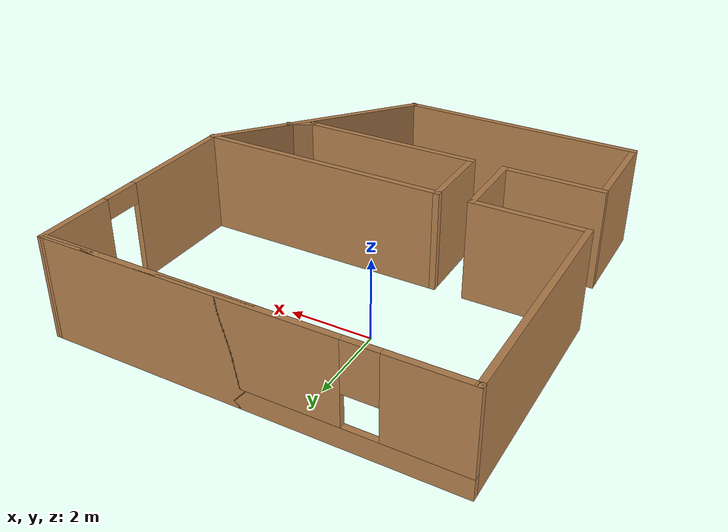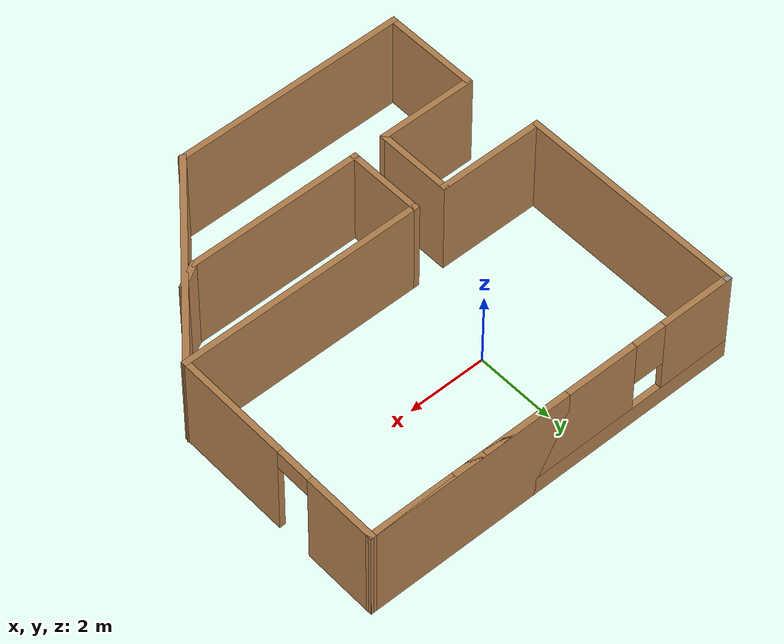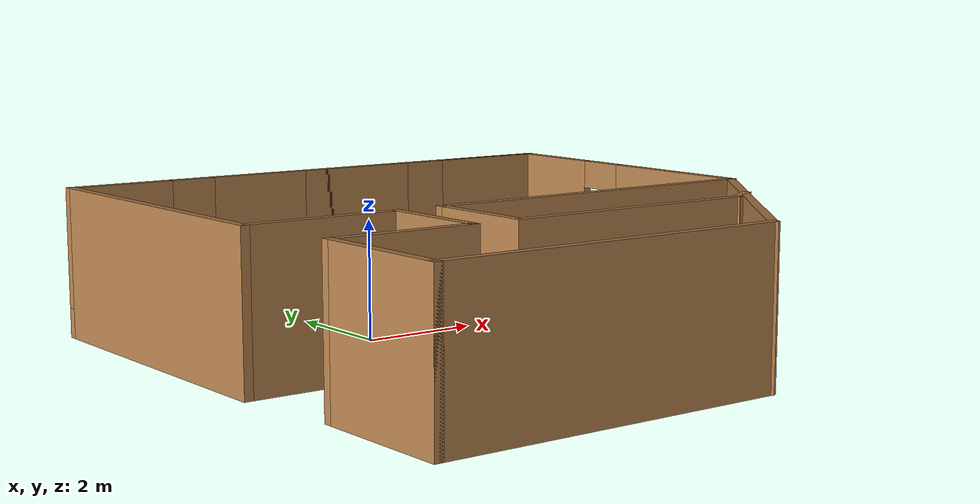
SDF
<?xml version='1.0'?>
<sdf version='1.6'>
  <model name='first_world'>
    <pose frame=''>1.07179 -1.76565 0 0 -0 0</pose>
    <link name='Wall_11'>
      <collision name='Wall_11_Collision'>
        <geometry>
          <box>
            <size>6.25 0.15 2.5</size>
          </box>
        </geometry>
        <pose frame=''>0 0 1.25 0 -0 0</pose>
      </collision>
      <visual name='Wall_11_Visual'>
        <pose frame=''>0 0 1.25 0 -0 0</pose>
        <geometry>
          <box>
            <size>6.25 0.15 2.5</size>
          </box>
        </geometry>
        <material>
          <script>
            <uri>file://media/materials/scripts/gazebo.material</uri>
            <name>Gazebo/Wood</name>
          </script>
          <ambient>1 1 1 1</ambient>
        </material>
        <meta>
          <layer>0</layer>
        </meta>
      </visual>
      <pose frame=''>1.6757 -0.685884 0 0 -0 0</pose>
    </link>
    <link name='Wall_12'>
      <pose frame=''>4.76261 2.11444 0 0 -0 1.55762</pose>
      <visual name='Wall_12_Visual_0'>
        <pose frame=''>-1.39116 0 1.25 0 -0 0</pose>
        <geometry>
          <box>
            <size>2.96882 0.15 2.5</size>
          </box>
        </geometry>
        <material>
          <script>
            <uri>file://media/materials/scripts/gazebo.material</uri>
            <name>Gazebo/Wood</name>
          </script>
          <ambient>1 1 1 1</ambient>
        </material>
        <meta>
          <layer>0</layer>
        </meta>
      </visual>
      <collision name='Wall_12_Collision_0'>
        <geometry>
          <box>
            <size>2.96882 0.15 2.5</size>
          </box>
        </geometry>
        <pose frame=''>-1.39116 0 1.25 0 -0 0</pose>
      </collision>
      <visual name='Wall_12_Visual_1'>
        <pose frame=''>1.93441 0 1.25 0 -0 0</pose>
        <geometry>
          <box>
            <size>1.88232 0.15 2.5</size>
          </box>
        </geometry>
        <material>
          <script>
            <uri>file://media/materials/scripts/gazebo.material</uri>
            <name>Gazebo/Wood</name>
          </script>
          <ambient>1 1 1 1</ambient>
        </material>
        <meta>
          <layer>0</layer>
        </meta>
      </visual>
      <collision name='Wall_12_Collision_1'>
        <geometry>
          <box>
            <size>1.88232 0.15 2.5</size>
          </box>
        </geometry>
        <pose frame=''>1.93441 0 1.25 0 -0 0</pose>
      </collision>
      <visual name='Wall_12_Visual_2'>
        <pose frame=''>0.543254 0 2.25 0 -0 0</pose>
        <geometry>
          <box>
            <size>0.9 0.15 0.5</size>
          </box>
        </geometry>
        <material>
          <script>
            <uri>file://media/materials/scripts/gazebo.material</uri>
            <name>Gazebo/Wood</name>
          </script>
          <ambient>1 1 1 1</ambient>
        </material>
        <meta>
          <layer>0</layer>
        </meta>
      </visual>
      <collision name='Wall_12_Collision_2'>
        <geometry>
          <box>
            <size>0.9 0.15 0.5</size>
          </box>
        </geometry>
        <pose frame=''>0.543254 0 2.25 0 -0 0</pose>
      </collision>
    </link>
    <link name='Wall_14'>
      <collision name='Wall_14_Collision'>
        <geometry>
          <box>
            <size>2 0.15 2.5</size>
          </box>
        </geometry>
        <pose frame=''>0 0 1.25 0 -0 0</pose>
      </collision>
      <visual name='Wall_14_Visual'>
        <pose frame=''>0 0 1.25 0 -0 0</pose>
        <geometry>
          <box>
            <size>2 0.15 2.5</size>
          </box>
        </geometry>
        <material>
          <script>
            <uri>file://media/materials/scripts/gazebo.material</uri>
            <name>Gazebo/Wood</name>
          </script>
          <ambient>1 1 1 1</ambient>
        </material>
        <meta>
          <layer>0</layer>
        </meta>
      </visual>
      <pose frame=''>-2.20049 -1.61023 0 0 0 -1.5708</pose>
    </link>
    <link name='Wall_15'>
      <collision name='Wall_15_Collision'>
        <geometry>
          <box>
            <size>2.5 0.15 2.5</size>
          </box>
        </geometry>
        <pose frame=''>0 0 1.25 0 -0 0</pose>
      </collision>
      <visual name='Wall_15_Visual'>
        <pose frame=''>0 0 1.25 0 -0 0</pose>
        <geometry>
          <box>
            <size>2.5 0.15 2.5</size>
          </box>
        </geometry>
        <material>
          <script>
            <uri>file://media/materials/scripts/gazebo.material</uri>
            <name>Gazebo/Wood</name>
          </script>
          <ambient>1 1 1 1</ambient>
        </material>
        <meta>
          <layer>0</layer>
        </meta>
      </visual>
      <pose frame=''>-3.37549 -2.53523 0 0 -0 3.14159</pose>
    </link>
    <link name='Wall_16'>
      <collision name='Wall_16_Collision'>
        <geometry>
          <box>
            <size>2.5 0.15 2.5</size>
          </box>
        </geometry>
        <pose frame=''>0 0 1.25 0 -0 0</pose>
      </collision>
      <visual name='Wall_16_Visual'>
        <pose frame=''>0 0 1.25 0 -0 0</pose>
        <geometry>
          <box>
            <size>2.5 0.15 2.5</size>
          </box>
        </geometry>
        <material>
          <script>
            <uri>file://media/materials/scripts/gazebo.material</uri>
            <name>Gazebo/Wood</name>
          </script>
          <ambient>1 1 1 1</ambient>
        </material>
        <meta>
          <layer>0</layer>
        </meta>
      </visual>
      <pose frame=''>-4.55049 -3.71023 0 0 0 -1.5708</pose>
    </link>
    <link name='Wall_17'>
      <collision name='Wall_17_Collision'>
        <geometry>
          <box>
            <size>6 0.15 2.5</size>
          </box>
        </geometry>
        <pose frame=''>0 0 1.25 0 -0 0</pose>
      </collision>
      <visual name='Wall_17_Visual'>
        <pose frame=''>0 0 1.25 0 -0 0</pose>
        <geometry>
          <box>
            <size>6 0.15 2.5</size>
          </box>
        </geometry>
        <material>
          <script>
            <uri>file://media/materials/scripts/gazebo.material</uri>
            <name>Gazebo/Wood</name>
          </script>
          <ambient>1 1 1 1</ambient>
        </material>
        <meta>
          <layer>0</layer>
        </meta>
      </visual>
      <pose frame=''>-1.62549 -4.88523 0 0 -0 0</pose>
    </link>
    <link name='Wall_18'>
      <collision name='Wall_18_Collision'>
        <geometry>
          <box>
            <size>5.56971 0.15 2.5</size>
          </box>
        </geometry>
        <pose frame=''>0 0 1.25 0 -0 0</pose>
      </collision>
      <visual name='Wall_18_Visual'>
        <pose frame=''>0 0 1.25 0 -0 0</pose>
        <geometry>
          <box>
            <size>5.56971 0.15 2.5</size>
          </box>
        </geometry>
        <material>
          <script>
            <uri>file://media/materials/scripts/gazebo.material</uri>
            <name>Gazebo/Wood</name>
          </script>
          <ambient>1 1 1 1</ambient>
        </material>
        <meta>
          <layer>0</layer>
        </meta>
      </visual>
      <pose frame=''>3.01261 -2.78556 0 0 -0 0.886443</pose>
    </link>
    <link name='Wall_20'>
      <collision name='Wall_20_Collision'>
        <geometry>
          <box>
            <size>2 0.15 2.5</size>
          </box>
        </geometry>
        <pose frame=''>0 0 1.25 0 -0 0</pose>
      </collision>
      <visual name='Wall_20_Visual'>
        <pose frame=''>0 0 1.25 0 -0 0</pose>
        <geometry>
          <box>
            <size>2 0.15 2.5</size>
          </box>
        </geometry>
        <material>
          <script>
            <uri>file://media/materials/scripts/gazebo.material</uri>
            <name>Gazebo/Wood</name>
          </script>
          <ambient>1 1 1 1</ambient>
        </material>
        <meta>
          <layer>0</layer>
        </meta>
      </visual>
      <pose frame=''>-1.3743 -1.61088 0 0 0 -1.5708</pose>
    </link>
    <link name='Wall_21'>
      <collision name='Wall_21_Collision'>
        <geometry>
          <box>
            <size>4.5 0.15 2.5</size>
          </box>
        </geometry>
        <pose frame=''>0 0 1.25 0 -0 0</pose>
      </collision>
      <visual name='Wall_21_Visual'>
        <pose frame=''>0 0 1.25 0 -0 0</pose>
        <geometry>
          <box>
            <size>4.5 0.15 2.5</size>
          </box>
        </geometry>
        <material>
          <script>
            <uri>file://media/materials/scripts/gazebo.material</uri>
            <name>Gazebo/Wood</name>
          </script>
          <ambient>1 1 1 1</ambient>
        </material>
        <meta>
          <layer>0</layer>
        </meta>
      </visual>
      <pose frame=''>0.800703 -2.53588 0 0 -0 0</pose>
    </link>
    <link name='Wall_22'>
      <collision name='Wall_22_Collision'>
        <geometry>
          <box>
            <size>0.75 0.15 2.5</size>
          </box>
        </geometry>
        <pose frame=''>0 0 1.25 0 -0 0</pose>
      </collision>
      <visual name='Wall_22_Visual'>
        <pose frame=''>0 0 1.25 0 -0 0</pose>
        <geometry>
          <box>
            <size>0.75 0.15 2.5</size>
          </box>
        </geometry>
        <material>
          <script>
            <uri>file://media/materials/scripts/gazebo.material</uri>
            <name>Gazebo/Wood</name>
          </script>
          <ambient>1 1 1 1</ambient>
        </material>
        <meta>
          <layer>0</layer>
        </meta>
      </visual>
      <pose frame=''>3.23551 -2.38588 0 0 -0 0.523599</pose>
    </link>
    <link name='Wall_5'>
      <collision name='Wall_5_Collision'>
        <geometry>
          <box>
            <size>5.25 0.15 2.5</size>
          </box>
        </geometry>
        <pose frame=''>0 0 1.25 0 -0 0</pose>
      </collision>
      <visual name='Wall_5_Visual'>
        <pose frame=''>0 0 1.25 0 -0 0</pose>
        <geometry>
          <box>
            <size>5.25 0.15 2.5</size>
          </box>
        </geometry>
        <material>
          <script>
            <uri>file://media/materials/scripts/gazebo.material</uri>
            <name>Gazebo/Wood</name>
          </script>
          <ambient>1 1 1 1</ambient>
        </material>
        <meta>
          <layer>0</layer>
        </meta>
      </visual>
      <pose frame=''>2.24951 4.91477 0 0 -0 0</pose>
    </link>
    <link name='Wall_6'>
      <pose frame=''>-0.000491 4.91477 0 0 -0 3.14159</pose>
      <visual name='Wall_6_Visual_0'>
        <pose frame=''>-3.7623 0 1.25 0 -0 0</pose>
        <geometry>
          <box>
            <size>2.22539 0.15 2.5</size>
          </box>
        </geometry>
        <material>
          <script>
            <uri>file://media/materials/scripts/gazebo.material</uri>
            <name>Gazebo/Wood</name>
          </script>
          <ambient>1 1 1 1</ambient>
        </material>
        <meta>
          <layer>0</layer>
        </meta>
      </visual>
      <collision name='Wall_6_Collision_0'>
        <geometry>
          <box>
            <size>2.22539 0.15 2.5</size>
          </box>
        </geometry>
        <pose frame=''>-3.7623 0 1.25 0 -0 0</pose>
      </collision>
      <visual name='Wall_6_Visual_1'>
        <pose frame=''>1.1127 0 0.25 0 -0 0</pose>
        <geometry>
          <box>
            <size>7.52461 0.15 0.5</size>
          </box>
        </geometry>
        <material>
          <script>
            <uri>file://media/materials/scripts/gazebo.material</uri>
            <name>Gazebo/Wood</name>
          </script>
          <ambient>1 1 1 1</ambient>
        </material>
        <meta>
          <layer>0</layer>
        </meta>
      </visual>
      <collision name='Wall_6_Collision_1'>
        <geometry>
          <box>
            <size>7.52461 0.15 0.5</size>
          </box>
        </geometry>
        <pose frame=''>1.1127 0 0.25 0 -0 0</pose>
      </collision>
      <visual name='Wall_6_Visual_2'>
        <pose frame=''>0.177728 0 1.5 0 -0 0</pose>
        <geometry>
          <box>
            <size>4.05467 0.15 2</size>
          </box>
        </geometry>
        <material>
          <script>
            <uri>file://media/materials/scripts/gazebo.material</uri>
            <name>Gazebo/Wood</name>
          </script>
          <ambient>1 1 1 1</ambient>
        </material>
        <meta>
          <layer>0</layer>
        </meta>
      </visual>
      <collision name='Wall_6_Collision_2'>
        <geometry>
          <box>
            <size>4.05467 0.15 2</size>
          </box>
        </geometry>
        <pose frame=''>0.177728 0 1.5 0 -0 0</pose>
      </collision>
      <visual name='Wall_6_Visual_3'>
        <pose frame=''>3.94003 0 1.5 0 -0 0</pose>
        <geometry>
          <box>
            <size>1.86994 0.15 2</size>
          </box>
        </geometry>
        <material>
          <script>
            <uri>file://media/materials/scripts/gazebo.material</uri>
            <name>Gazebo/Wood</name>
          </script>
          <ambient>1 1 1 1</ambient>
        </material>
        <meta>
          <layer>0</layer>
        </meta>
      </visual>
      <collision name='Wall_6_Collision_3'>
        <geometry>
          <box>
            <size>1.86994 0.15 2</size>
          </box>
        </geometry>
        <pose frame=''>3.94003 0 1.5 0 -0 0</pose>
      </collision>
      <visual name='Wall_6_Visual_4'>
        <pose frame=''>-2.24961 0 1.9 0 -0 0</pose>
        <geometry>
          <box>
            <size>0.8 0.15 1.2</size>
          </box>
        </geometry>
        <material>
          <script>
            <uri>file://media/materials/scripts/gazebo.material</uri>
            <name>Gazebo/Wood</name>
          </script>
          <ambient>1 1 1 1</ambient>
        </material>
        <meta>
          <layer>0</layer>
        </meta>
      </visual>
      <collision name='Wall_6_Collision_4'>
        <geometry>
          <box>
            <size>0.8 0.15 1.2</size>
          </box>
        </geometry>
        <pose frame=''>-2.24961 0 1.9 0 -0 0</pose>
      </collision>
      <visual name='Wall_6_Visual_5'>
        <pose frame=''>2.60506 0 1.9 0 -0 0</pose>
        <geometry>
          <box>
            <size>0.8 0.15 1.2</size>
          </box>
        </geometry>
        <material>
          <script>
            <uri>file://media/materials/scripts/gazebo.material</uri>
            <name>Gazebo/Wood</name>
          </script>
          <ambient>1 1 1 1</ambient>
        </material>
        <meta>
          <layer>0</layer>
        </meta>
      </visual>
      <collision name='Wall_6_Collision_5'>
        <geometry>
          <box>
            <size>0.8 0.15 1.2</size>
          </box>
        </geometry>
        <pose frame=''>2.60506 0 1.9 0 -0 0</pose>
      </collision>
    </link>
    <link name='Wall_7'>
      <collision name='Wall_7_Collision'>
        <geometry>
          <box>
            <size>0.15 0.15 2.5</size>
          </box>
        </geometry>
        <pose frame=''>0 0 1.25 0 -0 0</pose>
      </collision>
      <visual name='Wall_7_Visual'>
        <pose frame=''>0 0 1.25 0 -0 0</pose>
        <geometry>
          <box>
            <size>0.15 0.15 2.5</size>
          </box>
        </geometry>
        <material>
          <script>
            <uri>file://media/materials/scripts/gazebo.material</uri>
            <name>Gazebo/Grey</name>
          </script>
          <ambient>1 1 1 1</ambient>
        </material>
        <meta>
          <layer>0</layer>
        </meta>
      </visual>
      <pose frame=''>-4.80049 4.91477 0 0 -0 0</pose>
    </link>
    <link name='Wall_8'>
      <collision name='Wall_8_Collision'>
        <geometry>
          <box>
            <size>5.75 0.15 2.5</size>
          </box>
        </geometry>
        <pose frame=''>0 0 1.25 0 -0 0</pose>
      </collision>
      <visual name='Wall_8_Visual'>
        <pose frame=''>0 0 1.25 0 -0 0</pose>
        <geometry>
          <box>
            <size>5.75 0.15 2.5</size>
          </box>
        </geometry>
        <material>
          <script>
            <uri>file://media/materials/scripts/gazebo.material</uri>
            <name>Gazebo/Wood</name>
          </script>
          <ambient>1 1 1 1</ambient>
        </material>
        <meta>
          <layer>0</layer>
        </meta>
      </visual>
      <pose frame=''>-4.80049 2.11477 0 0 0 -1.5708</pose>
    </link>
    <link name='Wall_9'>
      <collision name='Wall_9_Collision'>
        <geometry>
          <box>
            <size>2.75 0.15 2.5</size>
          </box>
        </geometry>
        <pose frame=''>0 0 1.25 0 -0 0</pose>
      </collision>
      <visual name='Wall_9_Visual'>
        <pose frame=''>0 0 1.25 0 -0 0</pose>
        <geometry>
          <box>
            <size>2.75 0.15 2.5</size>
          </box>
        </geometry>
        <material>
          <script>
            <uri>file://media/materials/scripts/gazebo.material</uri>
            <name>Gazebo/Wood</name>
          </script>
          <ambient>1 1 1 1</ambient>
        </material>
        <meta>
          <layer>0</layer>
        </meta>
      </visual>
      <pose frame=''>-3.50049 -0.685228 0 0 -0 0</pose>
    </link>
    <static>1</static>
  </model>
</sdf>
